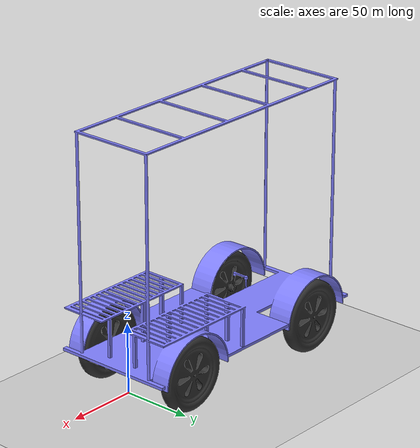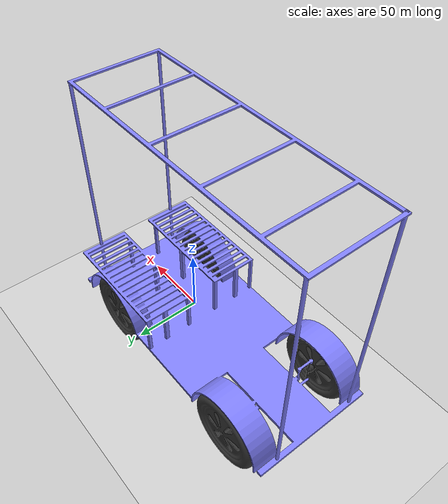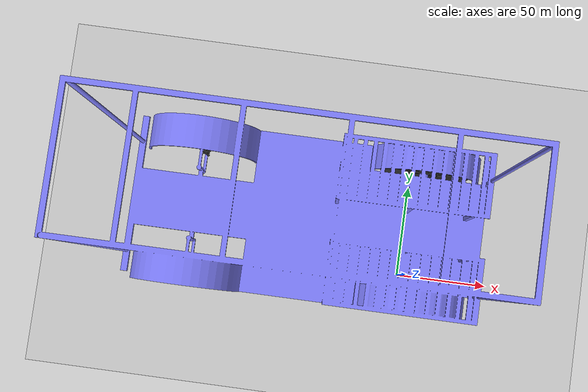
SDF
<?xml version="1.0" encoding="UTF-8"?>
<sdf version='1.8'>

<world name="automama_steering">

    <physics name="1ms" type="ignored">
      <max_step_size>0.001</max_step_size>
      <real_time_factor>1.0</real_time_factor>
    </physics>
    <plugin
      filename="ignition-gazebo-physics-system"
      name="gz::sim::systems::Physics">
    </plugin>
    <plugin
      filename="ignition-gazebo-user-commands-system"
      name="gz::sim::systems::UserCommands">
    </plugin>
    <plugin
      filename="ignition-gazebo-scene-broadcaster-system"
      name="gz::sim::systems::SceneBroadcaster">
    </plugin>

    <light type="directional" name="sun">
      <cast_shadows>true</cast_shadows>
      <pose>0 0 10 0 0 0</pose>
      <diffuse>1 1 1 1</diffuse>
      <specular>0.5 0.5 0.5 1</specular>
      <attenuation>
        <range>1000</range>
        <constant>0.9</constant>
        <linear>0.01</linear>
        <quadratic>0.001</quadratic>
      </attenuation>
      <direction>-0.5 0.1 -0.9</direction>
    </light>

    <model name="ground_plane">
      <static>true</static>
      <link name="link">
        <collision name="collision">
          <geometry>
            <plane>
              <normal>0 0 1</normal>
              <size>1000 1000</size>
            </plane>
          </geometry>
          <surface>
            <friction>
              <ode>
                <mu>50</mu>
              </ode>
            </friction>
          </surface>
        </collision>
        <visual name="visual">
          <geometry>
            <plane>
              <normal>0 0 1</normal>
              <size>100 100</size>
            </plane>
          </geometry>
          <material>
            <ambient>0.8 0.8 0.8 1</ambient>
            <diffuse>0.8 0.8 0.8 1</diffuse>
            <specular>0.8 0.8 0.8 1</specular>
          </material>
        </visual>
      </link>
    </model>

  <model name='automama'>
   <pose>0 0 10 0 0 0</pose>
    <self_collide>false</self_collide>
    <static>false</static>
    <link name="chassis">
      <inertial>
        <pose>-0.4195547534585827 0.22272554711801903 0.5183555009387848 0 0 0</pose>
        <mass>115</mass>
        <inertia>
          <ixx>33</ixx>
          <ixy>0.102</ixy>
          <ixz>2.864246</ixz>
          <iyy>61</iyy>
          <iyz>-0.034967</iyz>
          <izz>41</izz>
        </inertia>
      </inertial>
      <gravity>true</gravity>
      <velocity_decay/>
      <visual name="chassis_visual">
        <pose>0 0 0 0 0 0</pose>
        <geometry>
          <mesh>
            <scale>1 1 1</scale>
            <uri>base_link.stl</uri>
          </mesh>
        </geometry>
        <material>
          <ambient>0.5 0.5 1.0 1</ambient>
          <diffuse>0.5 0.5 1.0 1</diffuse>
          <specular>0.0 0.0 1.0 1</specular>
        </material>
      </visual>
      <collision name="chassis_collision">
        <pose>0 0 0 0 0 0</pose>
        <geometry>
          <mesh>
            <scale>1 1 1</scale>
            <uri>base_link.stl</uri>
          </mesh>
        </geometry>
      </collision>
    </link>

    <link name="wheel3_1">

      <pose>-1.3959603981095192e-07 -0.04494836313818579 -4.357814130662163e-07 0 0 0</pose>
      <inertial>
        <mass>20</mass>
        <inertia>
          <ixx>0.275927</ixx>
          <ixy>0</ixy>
          <ixz>0</ixz>
          <iyy>0.536625</iyy>
          <iyz>0</iyz>
          <izz>0.275927</izz>
        </inertia>
      </inertial>
      <gravity>true</gravity>
      <velocity_decay/>
      <visual name="wheel3_1_visual">
        <pose>-0.043639 0.09661 -0.252796 0 0 0</pose>
        <geometry>
          <mesh>
            <scale>1 1 1</scale>
            <uri>wheel3_1.stl</uri>
          </mesh>
        </geometry>
        <material>
            <ambient>0.2 0.2 0.2 1</ambient>
            <diffuse>0.2 0.2 0.2 1</diffuse>
            <specular>0.2 0.2 0.2 1</specular>
          </material>
      </visual>
      <collision name="wheel3_1_collision">
        <pose>-0.043639 0.09661 -0.252796 0 0 0</pose>
        <geometry>
          <mesh>
            <scale>1 1 1</scale>
            <uri>wheel3_1.stl</uri>
          </mesh>
        </geometry>
        <surface>
            <friction>
              <ode>
                <mu>0.5</mu>
                <mu2>1.0</mu2>
                <fdir1>0 0 1</fdir1>
              </ode>
            </friction>
          </surface>
      </collision>
    </link>

    <link name="wheel4_1">
      <inertial>
      <pose>-1.3193427806507119e-07 0.044948129030530914 -4.432851846147834e-07 0 0 0</pose>
        <mass>20</mass>
        <inertia>
          <ixx>0.275927</ixx>
          <ixy>0</ixy>
          <ixz>0</ixz>
          <iyy>0.536625</iyy>
          <iyz>0</iyz>
          <izz>0.275927</izz>
        </inertia>
      </inertial>
      <gravity>true</gravity>
      <visual name="wheel4_1_visual">
        <pose>-0.043639 -0.54339 -0.252796 0 0 0</pose>
        <geometry>
          <mesh>
            <scale>1 1 1</scale>
            <uri>wheel4_1.stl</uri>
          </mesh>
        </geometry>
        <material>
            <ambient>0.2 0.2 0.2 1</ambient>
            <diffuse>0.2 0.2 0.2 1</diffuse>
            <specular>0.2 0.2 0.2 1</specular>
          </material>
      </visual>
      <collision name="wheel4_1_collision">
        <pose>-0.043639 -0.54339 -0.252796 0 0 0</pose>
        <geometry>
          <mesh>
            <scale>1 1 1</scale>
            <uri>wheel4_1.stl</uri>
          </mesh>
        </geometry>
        <surface>
            <friction>
              <ode>
                <mu>0.5</mu>
                <mu2>1.0</mu2>
                <fdir1>0 0 1</fdir1>
              </ode>
            </friction>
          </surface>
      </collision>
    </link>

    <link name="wheel2_1">
      <inertial>
        <pose>-1.3690663536181091e-07 0.0672954800029184 -4.334913943915275e-07 0 0 0</pose>
        <mass>19.53581228545425</mass>
        <inertia>
          <ixx>0.276668</ixx>
          <iyy>0.536716</iyy>
          <izz>0.276668</izz>
          <ixy>0.0</ixy>
          <iyz>0.0</iyz>
          <ixz>0.0</ixz>
        </inertia>
      </inertial>
      <gravity>true</gravity>

      <visual name="wheel2_1_visual">
        <pose>1.136361 -0.542437 -0.252796 0 0 0</pose>
        <geometry>
          <mesh>
            <scale>1 1 1</scale>
            <uri>wheel2_1.stl</uri>
          </mesh>
        </geometry>
        <material>
            <ambient>0.2 0.2 0.2 1</ambient>
            <diffuse>0.2 0.2 0.2 1</diffuse>
            <specular>0.2 0.2 0.2 1</specular>
          </material>
      </visual>
      <collision name="wheel2_1_collision">
        <pose>1.136361 -0.542437 -0.252796 0 0 0</pose>
        <geometry>
          <mesh>
            <scale>1 1 1</scale>
            <uri>wheel2_1.stl</uri>
          </mesh>
        </geometry>
        <surface>
            <friction>
              <ode>
                <mu>0.5</mu>
                <mu2>1.0</mu2>
                <fdir1>0 0 1</fdir1>
              </ode>
            </friction>
          </surface>
      </collision>
    </link>

    <link name="wheel1_1">
      <inertial>
      <pose>-1.3933370746066487e-07 -0.04494836313818579 -4.4256888215299384e-07 0 0 0</pose>
        <mass>20</mass>
        <inertia>
          <ixx>0.275927</ixx>
          <ixy>0</ixy>
          <ixz>0</ixz>
          <iyy>0.536625</iyy>
          <iyz>0</iyz>
          <izz>0.275927</izz>
        </inertia>
      </inertial>
      <gravity>true</gravity>

      <visual name="wheel1_1_visual">
        <pose>1.136361 0.09661 -0.252796 0 0 0</pose>
        <geometry>
          <mesh>
            <scale>1 1 1</scale>
            <uri>wheel1_1.stl</uri>
          </mesh>
        </geometry>
        <material>
            <ambient>0.2 0.2 0.2 1</ambient>
            <diffuse>0.2 0.2 0.2 1</diffuse>
            <specular>0.2 0.2 0.2 1</specular>
          </material>
      </visual>
      <collision name="wheel1_1_collision">
        <pose>1.136361 0.09661 -0.252796 0 0 0</pose>
        <geometry>
          <mesh>
            <scale>1 1 1</scale>
            <uri>wheel1_1.stl</uri>
          </mesh>
        </geometry>
        <surface>
            <friction>
              <ode>
                <mu>0.5</mu>
                <mu2>1.0</mu2>
                <fdir1>0 0 1</fdir1>
              </ode>
            </friction>
          </surface>
      </collision>
    </link>

    <link name="wheel1_link_1">
      <inertial>
      <pose>-1.355089531696052e-07 -0.011876851439479072 -0.09132946238565198 0 0 0</pose>
        <mass>0.68</mass>
        <inertia>
          <ixx>0.000711</ixx>
          <ixy>0</ixy>
          <ixz>0</ixz>
          <iyy>0.000693</iyy>
          <iyz>1.1e-05</iyz>
          <izz>0.000162</izz>
        </inertia>
      </inertial>
      <gravity>true</gravity>
      <visual name="wheel1_link_1_visual">
        <pose>1.136361 0.06361 -0.342796 0 0 0</pose>
        <geometry>
          <mesh>
            <scale>1 1 1</scale>
            <uri>wheel1_link_1.stl</uri>
          </mesh>
        </geometry>
        <material>
            <ambient>0.2 0.2 0.2 1</ambient>
            <diffuse>0.2 0.2 0.2 1</diffuse>
            <specular>0.2 0.2 0.2 1</specular>
          </material>
      </visual>
    </link>

    <link name="wheel2_link_1">
      <inertial>
      <pose>-1.3550895072711455e-07 0.01206275012818847 -0.09138140441465087 0 0 0</pose>
        <mass>0.68</mass>
        <inertia>
          <ixx>0.000711</ixx>
          <ixy>0</ixy>
          <ixz>0</ixz>
          <iyy>0.000693</iyy>
          <iyz>1.1e-05</iyz>
          <izz>0.000162</izz>
        </inertia>
      </inertial>
      <gravity>true</gravity>

      <visual name="wheel2_link_1_visual">
        <pose>1.136361 -0.509437 -0.342796 0 0 0</pose>
        <geometry>
          <mesh>
            <scale>1 1 1</scale>
            <uri>wheel2_link_1.stl</uri>
          </mesh>
        </geometry>
        <material>
            <ambient>0.2 0.2 0.2 1</ambient>
            <diffuse>0.2 0.2 0.2 1</diffuse>
            <specular>0.2 0.2 0.2 1</specular>
          </material>
      </visual>
    </link>

    <joint name="wheel3_joint" type="revolute">
      <pose>0.043639 -0.09661 0.252796 0 0 0</pose>
      <parent>chassis</parent>
      <child>wheel3_1</child>
      <axis>
        <xyz>0.0 -1.0 0.0</xyz>
        <limit>
            <lower>-1.79769e+308</lower>
            <upper>1.79769e+308</upper>
          </limit>
      </axis>
    </joint>

    <joint name="wheel4_joint" type="revolute">
      <pose>0.043639 0.54339 0.252796 0 0 0</pose>
      <parent>chassis</parent>
      <child>wheel4_1</child>
      <axis>
        <xyz>0.0 -1.0 0.0</xyz>
        <limit>
            <lower>-1.79769e+308</lower>
            <upper>1.79769e+308</upper>
          </limit>
      </axis>
    </joint>

    <joint name="wheel2_joint" type="revolute">
      <pose>0.0 0.033 -0.09 0 0 0</pose>
      <parent>wheel2_link_1</parent>
      <child>wheel2_1</child>
      <axis>
        <xyz>0.0 -1.0 0.0</xyz>
        <limit>
            <lower>-1.79769e+308</lower>
            <upper>1.79769e+308</upper>
          </limit>
      </axis>
    </joint>

    <joint name="wheel1_joint" type="revolute">
      <pose>0.0 -0.033 -0.09 0 0 0</pose>
      <parent>wheel1_link_1</parent>
      <child>wheel1_1</child>
      <axis>
        <xyz>0.0 -1.0 0.0</xyz>
        <limit>
            <lower>-1.79769e+308</lower>
            <upper>1.79769e+308</upper>
          </limit>
      </axis>
    </joint>

    <joint name="wheel1_steering" type="revolute">
      <pose>-1.136361 -0.06361 0.342796 0 0 0</pose>
      <parent>chassis</parent>
      <child>wheel1_link_1</child>
      <axis>
        <xyz>0.0 0.0 1.0</xyz>
        <limit>
            <lower>-0.6</lower>
            <upper>+0.6</upper>
            <velocity>1.0</velocity>
            <effort>25</effort>
          </limit>
          <use_parent_model_frame>1</use_parent_model_frame>
      </axis>
    </joint>

    <joint name="wheel2_steering" type="revolute">
      <pose>-1.136361 0.509437 0.342796 0 0 0</pose>
      <parent>chassis</parent>
      <child>wheel2_link_1</child>
      <axis>
        <xyz>0.0 0.0 -1.0</xyz>
        <limit>
          <lower>-0.6</lower>
          <upper>+0.6</upper>
          <velocity>1.0</velocity>
          <effort>25</effort>
        </limit>
        <use_parent_model_frame>1</use_parent_model_frame>
      </axis>
    </joint>

    <plugin
        filename="ignition-gazebo-ackermann-steering-system"
        name="gz::sim::systems::AckermannSteering">
        <left_joint>wheel1_joint</left_joint>
        <left_joint>wheel3_joint</left_joint>
        <right_joint>wheel2_joint</right_joint>
        <right_joint>wheel4_joint</right_joint>
        <left_steering_joint>wheel1_steering</left_steering_joint>
        <right_steering_joint>wheel2_steering</right_steering_joint>
        <kingpin_width>1.0</kingpin_width>
        <steering_limit>0.55</steering_limit>
        <wheel_base>1.0</wheel_base>
        <wheel_separation>0.09</wheel_separation>
        <wheel_radius>0.25</wheel_radius>
        <min_velocity>-1</min_velocity>
        <max_velocity>1</max_velocity>
        <min_acceleration>-3</min_acceleration>
        <max_acceleration>3</max_acceleration>
      </plugin>
    </model>
  </world>
</sdf>
